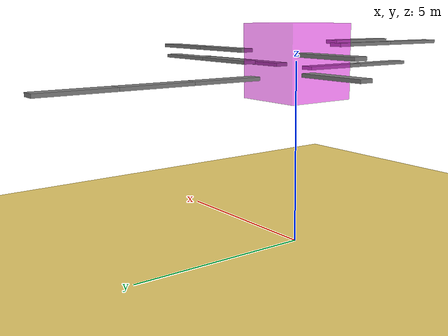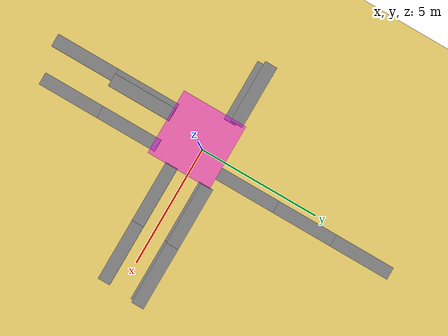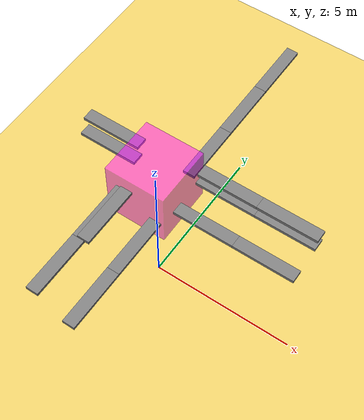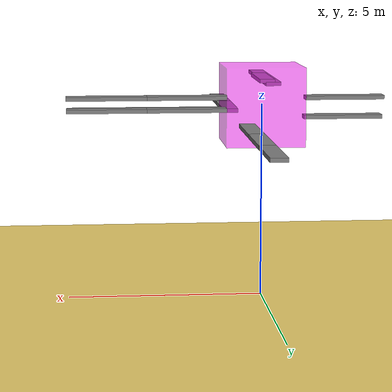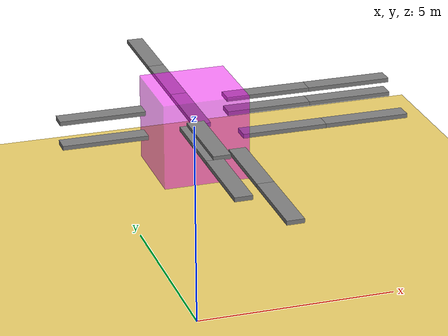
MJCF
<mujoco><option>viscosity="0.001002"</option><asset><texture builtin="gradient" height="256" rgb1="0 1 1" rgb2=".2 .3 .4" type="skybox" width="256" /></asset><visual><headlight ambient="0.5 0.5 0.5" /></visual><worldbody><light diffuse=".5 .5 .5" pos="0 0 10" dir="0 0 -1" /><geom name="floor" type="plane" size="50 50 50" rgba="0.9176 0.8078 0.4156 1.0" /><body><freejoint name="body" /><geom name="body" pos="0 0 5" type="box" size="1 1 1" rgba="225 0 225 .5" mass="1" /><body name="leg_0"><geom pos="2 -0.3304722021495867 4.839244297412261" type="box" size="1 0.2 0.05" mass="1" /><joint name="leg_0_Hinge" pos="1.0 -0.16523610107479336 4.789244297412261" axis="0 1 0" range="-10 10" limited="true" /></body><body name="leg_1"><geom pos="-2 0.5071682830477378 4.731481175494474" type="box" size="1 0.2 0.05" mass="1" /><joint name="leg_1_Hinge" pos="-1.0 0.2535841415238689 4.681481175494474" axis="0 -1 0" range="-10 10" limited="true" /></body><body name="leg_2"><geom pos="0.4955702548489218 2 4.567845554843578" type="box" size="0.2 1 0.05" mass="1" /><joint name="leg_2_Hinge" pos="0.2477851274244609 1.0 4.5178455548435785" axis="-1 0 0" range="-10 10" limited="true" /></body><body name="leg_3"><geom pos="2 0.8997178210080685 5.2709506176815255" type="box" size="1 0.2 0.05" mass="1" /><joint name="leg_3_Hinge" pos="1.0 0.44985891050403426 5.220950617681526" axis="0 1 0" range="-10 10" limited="true" /></body><body name="leg_4"><geom pos="-0.43818355674613096 -2 5.420640301714704" type="box" size="0.2 1 0.05" mass="1" /><joint name="leg_4_Hinge" pos="-0.21909177837306548 -1.0 5.370640301714704" axis="1 0 0" range="-10 10" limited="true" /></body><body name="leg_5"><geom pos="-0.27433364997073584 -2 5.496980161949358" type="box" size="0.2 1 0.05" mass="1" /><joint name="leg_5_Hinge" pos="-0.13716682498536792 -1.0 5.446980161949358" axis="1 0 0" range="-10 10" limited="true" /></body><body name="leg_6"><geom pos="-2 0.7191964917076525 5.24130669219395" type="box" size="1 0.2 0.05" mass="1" /><joint name="leg_6_Hinge" pos="-1.0 0.35959824585382627 5.19130669219395" axis="0 -1 0" range="-10 10" limited="true" /></body><body name="leg_7"><geom pos="0.7007600978995012 -2 4.72654103483031" type="box" size="0.2 1 0.05" mass="1" /><joint name="leg_7_Hinge" pos="0.3503800489497506 -1.0 4.6765410348303105" axis="1 0 0" range="-10 10" limited="true" /></body><body name="leg_8"><geom pos="2 0.8184706712971583 4.950821488296894" type="box" size="1 0.2 0.05" mass="1" /><joint name="leg_8_Hinge" pos="1.0 0.40923533564857917 4.900821488296894" axis="0 1 0" range="-10 10" limited="true" /></body><body name="leg_9"><geom pos="4 0.8184706712971583 4.950821488296894" type="box" size="1 0.2 0.05" mass="1" /><joint name="leg_9_Hinge" pos="2.0 0.40923533564857917 4.900821488296894" axis="0 1 0" range="-10 10" limited="true" /></body><body name="leg_10"><geom pos="-0.43818355674613096 -4 5.420640301714704" type="box" size="0.2 1 0.05" mass="1" /><joint name="leg_10_Hinge" pos="-0.21909177837306548 -2.0 5.370640301714704" axis="1 0 0" range="-10 10" limited="true" /></body><body name="leg_11"><geom pos="4 -0.3304722021495867 4.839244297412261" type="box" size="1 0.2 0.05" mass="1" /><joint name="leg_11_Hinge" pos="2.0 -0.16523610107479336 4.789244297412261" axis="0 1 0" range="-10 10" limited="true" /></body><body name="leg_12"><geom pos="0.4955702548489218 4 4.567845554843578" type="box" size="0.2 1 0.05" mass="1" /><joint name="leg_12_Hinge" pos="0.2477851274244609 2.0 4.5178455548435785" axis="-1 0 0" range="-10 10" limited="true" /></body><body name="leg_13"><geom pos="4 0.8997178210080685 5.2709506176815255" type="box" size="1 0.2 0.05" mass="1" /><joint name="leg_13_Hinge" pos="2.0 0.44985891050403426 5.220950617681526" axis="0 1 0" range="-10 10" limited="true" /></body><body name="leg_14"><geom pos="0.7007600978995012 -4 4.72654103483031" type="box" size="0.2 1 0.05" mass="1" /><joint name="leg_14_Hinge" pos="0.3503800489497506 -2.0 4.6765410348303105" axis="1 0 0" range="-10 10" limited="true" /></body><body name="leg_15"><geom pos="4 0.8997178210080685 5.2709506176815255" type="box" size="1 0.2 0.05" mass="1" /><joint name="leg_15_Hinge" pos="2.0 0.44985891050403426 5.220950617681526" axis="0 1 0" range="-10 10" limited="true" /></body><body name="leg_16"><geom pos="0.4955702548489218 6 4.567845554843578" type="box" size="0.2 1 0.05" mass="1" /><joint name="leg_16_Hinge" pos="0.2477851274244609 3.0 4.5178455548435785" axis="-1 0 0" range="-10 10" limited="true" /></body><body name="leg_17"><geom pos="0.4955702548489218 4 4.567845554843578" type="box" size="0.2 1 0.05" mass="1" /><joint name="leg_17_Hinge" pos="0.2477851274244609 2.0 4.5178455548435785" axis="-1 0 0" range="-10 10" limited="true" /></body></body></worldbody><actuator><motor name="leg_0_Hinge" gear="50" joint="leg_0_Hinge" /></actuator><actuator><motor name="leg_1_Hinge" gear="50" joint="leg_1_Hinge" /></actuator><actuator><motor name="leg_2_Hinge" gear="50" joint="leg_2_Hinge" /></actuator><actuator><motor name="leg_3_Hinge" gear="50" joint="leg_3_Hinge" /></actuator><actuator><motor name="leg_4_Hinge" gear="50" joint="leg_4_Hinge" /></actuator><actuator><motor name="leg_5_Hinge" gear="50" joint="leg_5_Hinge" /></actuator><actuator><motor name="leg_6_Hinge" gear="50" joint="leg_6_Hinge" /></actuator><actuator><motor name="leg_7_Hinge" gear="50" joint="leg_7_Hinge" /></actuator><actuator><motor name="leg_8_Hinge" gear="50" joint="leg_8_Hinge" /></actuator><actuator><motor name="leg_9_Hinge" gear="50" joint="leg_9_Hinge" /></actuator><actuator><motor name="leg_10_Hinge" gear="50" joint="leg_10_Hinge" /></actuator><actuator><motor name="leg_11_Hinge" gear="50" joint="leg_11_Hinge" /></actuator><actuator><motor name="leg_12_Hinge" gear="50" joint="leg_12_Hinge" /></actuator><actuator><motor name="leg_13_Hinge" gear="50" joint="leg_13_Hinge" /></actuator><actuator><motor name="leg_14_Hinge" gear="50" joint="leg_14_Hinge" /></actuator><actuator><motor name="leg_15_Hinge" gear="50" joint="leg_15_Hinge" /></actuator><actuator><motor name="leg_16_Hinge" gear="50" joint="leg_16_Hinge" /></actuator><actuator><motor name="leg_17_Hinge" gear="50" joint="leg_17_Hinge" /></actuator></mujoco>
